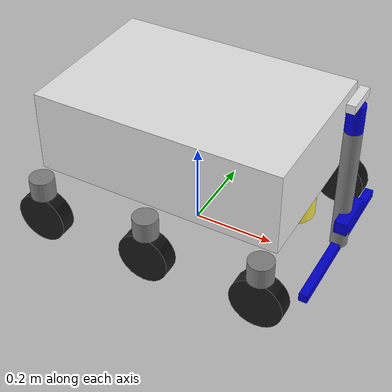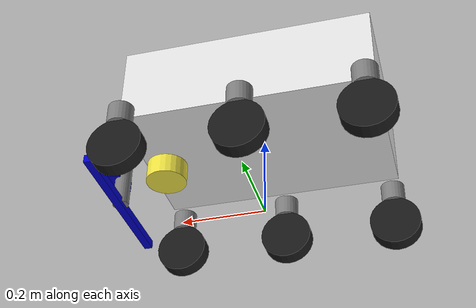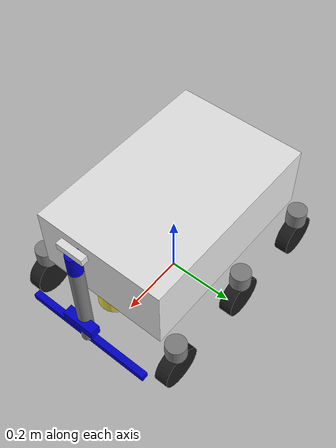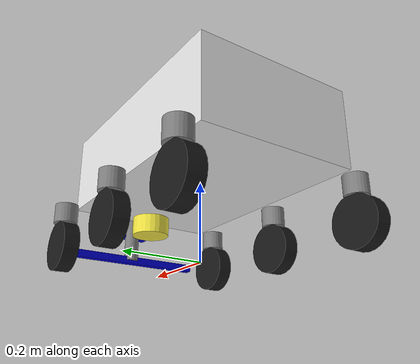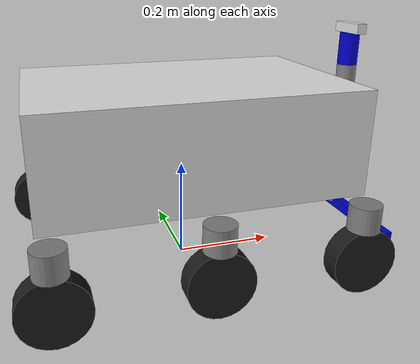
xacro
<?xml version="1.0"?>
<robot xmlns:xacro="http://www.ros.org/wiki/xacro" name="ak60_robot">
    <xacro:arg name="initial_positions_file" default="initial_positions.yaml" />

    <!-- Import ak60_robot urdf file -->
    <xacro:include filename="$(find ak60_description)/urdf/robot.urdf.xacro" />

    <!-- Import control_xacro -->
    <xacro:include filename="ak60_robot.ros2_control.xacro" />

    <xacro:ak60_robot_ros2_control name="FakeSystem" initial_positions_file="$(arg initial_positions_file)"/>

</robot>

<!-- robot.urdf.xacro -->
<robot xmlns:xacro="http://www.ros.org/wiki/xacro" name="ak60_robot">

  <xacro:include filename="properties.xacro"/>
  <xacro:include filename="wheel.xacro"/>
  <xacro:include filename="chassis.xacro"/>
  <xacro:include filename="manipulator.xacro"/>
  <xacro:include filename="ros2_control.xacro"/>
  <xacro:ak60_ros2_control/>

</robot>

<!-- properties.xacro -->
<robot xmlns:xacro="http://www.ros.org/wiki/xacro">

  <xacro:property name="body_l" value="0.600"/>
  <xacro:property name="body_w" value="0.400"/>
  <xacro:property name="body_h" value="0.2"/>
  <xacro:property name="body_mass" value="8.0"/>

  <xacro:property name="dx" value="0.28"/>
  <xacro:property name="dy" value="0.235"/>
  <xacro:property name="wheel_radius" value="0.0635"/>
  <xacro:property name="wheel_width" value="0.04"/>
  <xacro:property name="wheel_mass" value="0.8"/>
  <xacro:property name="steer_mass" value="0.5"/>

  <xacro:property name="arm_radius" value="0.03"/>
  <xacro:property name="arm_length" value="0.2"/>
  <xacro:property name="arm_mass" value="0.5"/>

  <material name="black"> <color rgba="0.1 0.1 0.1 1.0"/> </material>
  <material name="white"> <color rgba="0.9 0.9 0.9 1.0"/> </material>
  <material name="blue">  <color rgba="0.0 0.0 0.8 1.0"/> </material>
  <material name="grey">  <color rgba="0.5 0.5 0.5 1.0"/> </material>

  <xacro:macro name="box_inertia" params="m x y z">
    <inertial>
      <mass value="${m}"/>
      <inertia ixx="${m*(y*y+z*z)/12}" ixy="0" ixz="0" iyy="${m*(x*x+z*z)/12}" iyz="0" izz="${m*(x*x+y*y)/12}"/>
    </inertial>
  </xacro:macro>

  <xacro:macro name="cylinder_inertia_y" params="m r l">
    <inertial>
      <mass value="${m}"/>
      <inertia ixx="${m*(3*r*r+l*l)/12}" ixy="0" ixz="0" iyy="${m*r*r/2}" iyz="0" izz="${m*(3*r*r+l*l)/12}"/>
    </inertial>
  </xacro:macro>

  <xacro:macro name="cylinder_inertia_z" params="m r l">
    <inertial>
      <mass value="${m}"/>
      <inertia ixx="${m*(3*r*r+l*l)/12}" ixy="0" ixz="0" iyy="${m*(3*r*r+l*l)/12}" iyz="0" izz="${m*r*r/2}"/>
    </inertial>
  </xacro:macro>
</robot>

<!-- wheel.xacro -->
<robot xmlns:xacro="http://www.ros.org/wiki/xacro">

  <xacro:macro name="wheel_module" params="index x y">

    <link name="steer_${index}">
      <visual>
        <origin xyz="0 0 0" rpy="0 0 0"/>
        <geometry><cylinder radius="0.03" length="0.05"/></geometry>
        <material name="grey"/>
      </visual>
      <collision>
        <origin xyz="0 0 0" rpy="0 0 0"/>
        <geometry><cylinder radius="0.03" length="0.05"/></geometry>
      </collision>
      <xacro:cylinder_inertia_z m="${steer_mass}" r="0.03" l="0.05"/>
    </link>

    <joint name="wheel_steer_${index}" type="revolute">
      <parent link="base_link"/>
      <child link="steer_${index}"/>
      <origin xyz="${x} ${y} 0.152" rpy="0 0 0"/>
      <axis xyz="0 0 1"/>
      <limit lower="-1.5708" upper="1.5708" effort="50" velocity="3.14"/>
      <dynamics damping="1.0" friction="0.5"/>
    </joint>

    <link name="wheel_${index}">
      <visual>
        <origin xyz="0 0 0" rpy="1.5708 0 0"/>
        <geometry><cylinder radius="${wheel_radius}" length="${wheel_width}"/></geometry>
        <material name="black"/>
      </visual>
      <collision>
        <origin xyz="0 0 0" rpy="1.5708 0 0"/>
        <geometry><cylinder radius="${wheel_radius}" length="${wheel_width}"/></geometry>
      </collision>
      <xacro:cylinder_inertia_y m="${wheel_mass}" r="${wheel_radius}" l="${wheel_width}"/>
    </link>

    <joint name="wheel_joint_${index}" type="continuous">
      <parent link="steer_${index}"/>
      <child link="wheel_${index}"/>
      <origin xyz="0 0 -0.0855" rpy="0 0 0"/>
      <axis xyz="0 1 0"/>
      <dynamics damping="0.1" friction="0.05"/>
    </joint>

  </xacro:macro>
</robot>

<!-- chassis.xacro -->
<robot xmlns:xacro="http://www.ros.org/wiki/xacro">

  <link name="base_link">
    <visual>
      <origin xyz="0 0 0.277" rpy="0 0 0"/>
      <geometry><box size="${body_l} ${body_w} ${body_h}"/></geometry>
      <material name="white"/>
    </visual>
    <collision>
      <origin xyz="0 0 0.1" rpy="0 0 0"/>
      <geometry><box size="${body_l} ${body_w} ${body_h}"/></geometry>
    </collision>
    <xacro:box_inertia m="${body_mass}" x="${body_l}" y="${body_w}" z="${body_h}"/>
  </link>

  <link name="imu_link">
  <visual>
      <origin xyz="0 0 0.277" rpy="0 0 0"/>
      <geometry><box size="0.01 0.01 0.005"/></geometry>
      <material name="blue"/>
    </visual>
  </link>

  <joint name="imu_joint" type="fixed">
    <parent link="base_link"/>
    <child link="imu_link"/>
    <origin xyz="0 0 0" rpy="0 0 0"/>
  </joint>

  <link name="camera_link">
    <visual>
      <geometry><box size="0.03 0.1 0.03"/></geometry>
      <material name="blue"/>
    </visual>
  </link>

  <joint name="camera_joint" type="fixed">
    <parent link="arm_1"/>
    <child link="camera_link"/>
    <origin xyz="0.015 0.0 0.085" rpy="0 0 0"/>
  </joint>

  <link name="laser_frame">
  <visual>
    <geometry>
      <cylinder radius="0.05" length="0.05"/>
      <material name="black"/>
    </geometry>
  </visual>
  </link>

  <joint name="laser_joint" type="fixed">
    <parent link="base_link"/>
    <child link="laser_frame"/>
    <origin xyz="0.25 0 0.15" rpy="0 0 1.5708"/>
  </joint>

  <xacro:wheel_module index="1" x="${dx}"  y="${dy}"/>
  <xacro:wheel_module index="2" x="0"      y="${dy}"/>
  <xacro:wheel_module index="3" x="${-dx}" y="${dy}"/>
  <xacro:wheel_module index="4" x="${dx}"  y="${-dy}"/>
  <xacro:wheel_module index="5" x="0"      y="${-dy}"/>
  <xacro:wheel_module index="6" x="${-dx}" y="${-dy}"/>

</robot>

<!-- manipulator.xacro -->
<robot xmlns:xacro="http://www.ros.org/wiki/xacro">

  <link name="arm_1">
    <visual>
      <origin xyz="0 0 0" rpy="0 0 0"/>
      <geometry><box size="0.02 0.4 0.02"/></geometry>
      <material name="blue"/>
    </visual>
  </link>

  <joint name="arm_joint_1" type="prismatic">
    <parent link="base_link"/>
    <child link="arm_1"/>
    <origin xyz="0.365 0.0 0.077" rpy="0 0 0"/>
    <axis xyz="0 0 1"/>
    <limit lower="0.0" upper="0.75" effort="5" velocity="1.0"/>
  </joint>

  <link name="arm_2">
    <visual>
      <origin xyz="0.0 0 0.155" rpy="0 0 0"/>
      <geometry><cylinder radius="0.02" length="0.310"/></geometry>
      <material name="grey"/>
    </visual>
  </link>

  <joint name="arm_joint_2" type="revolute">
    <parent link="arm_1"/>
    <child link="arm_2"/>
    <origin xyz="0 0 0.0" rpy="0 0 0"/>
    <axis xyz="0 1 0"/>
    <limit lower="-1.57" upper="1.57" effort="100" velocity="3.14"/>
  </joint>

  <link name="arm_3">
    <visual>
      <origin xyz="0 0 0.0325" rpy="0 0 0"/>
      <geometry><cylinder radius="0.02" length="0.065"/></geometry>
      <material name="blue"/>
    </visual>
  </link>

  <joint name="arm_joint_3" type="revolute">
    <parent link="arm_2"/>
    <child link="arm_3"/>
    <origin xyz="0 0 0.31" rpy="0 0 0"/>
    <axis xyz="0 1 0"/>
    <limit lower="-1.57" upper="1.57" effort="100" velocity="0.3"/>
  </joint>

  <link name="gripper_link">
    <visual>
      <origin xyz="0 0 0.01" rpy="0 0 0"/>
      <geometry><box size="0.02 0.08 0.02"/></geometry>
      <material name="white"/>
    </visual>
  </link>

  <joint name="gripper_joint" type="revolute">
    <parent link="arm_3"/>
    <child link="gripper_link"/>
    <origin xyz="0 0 0.065" rpy="0 0 0"/>
    <axis xyz="0 0 1"/>
    <limit lower="-1.57" upper="1.57" effort="50" velocity="3.14"/>
  </joint>

</robot>
